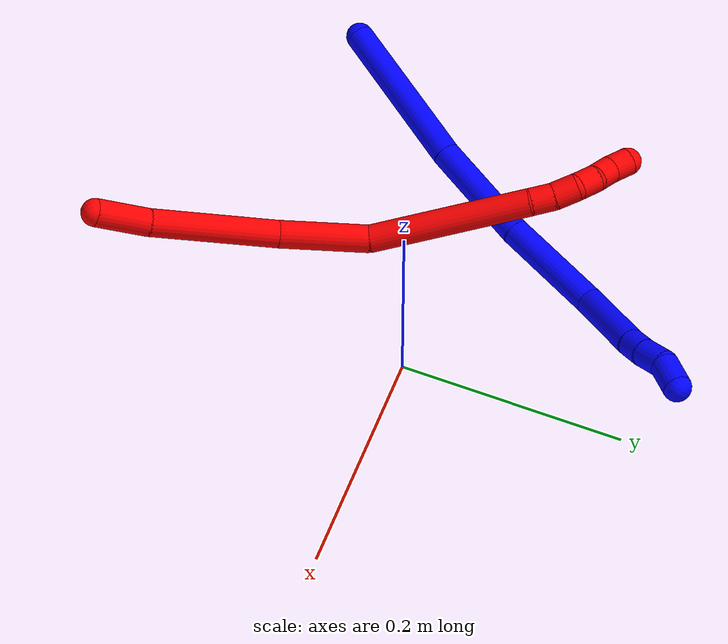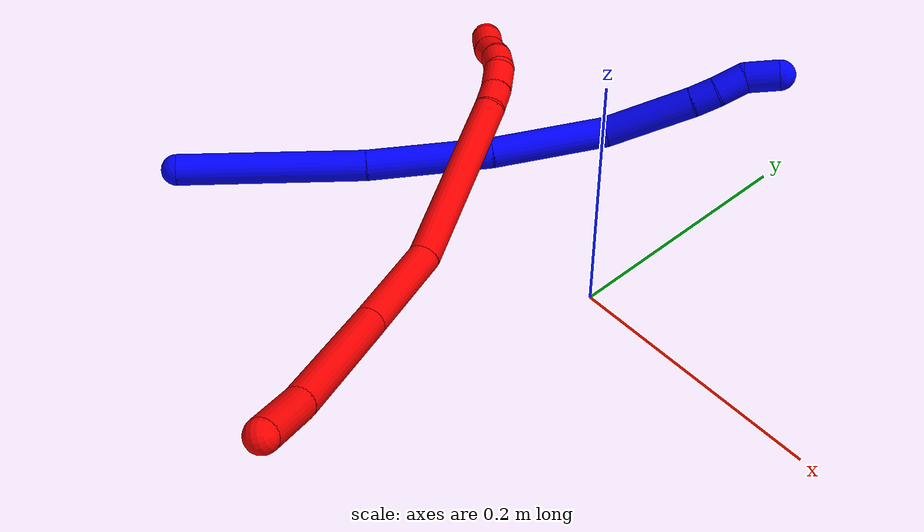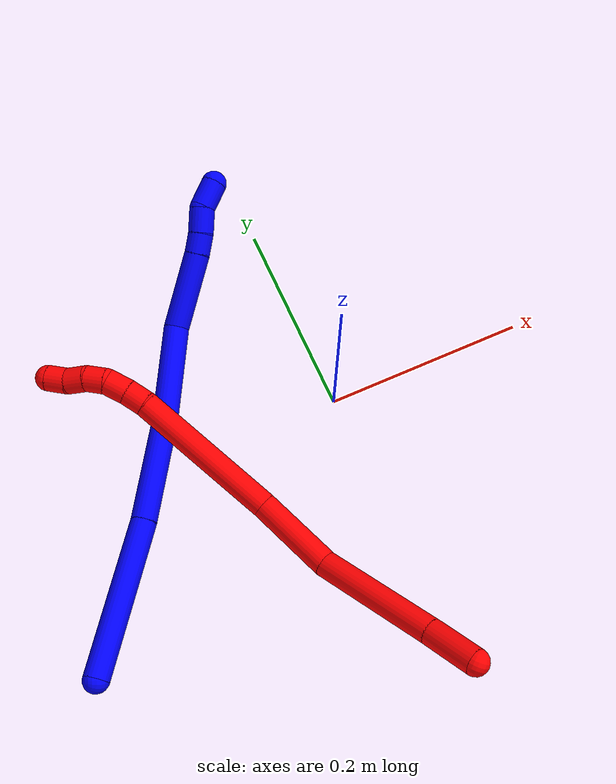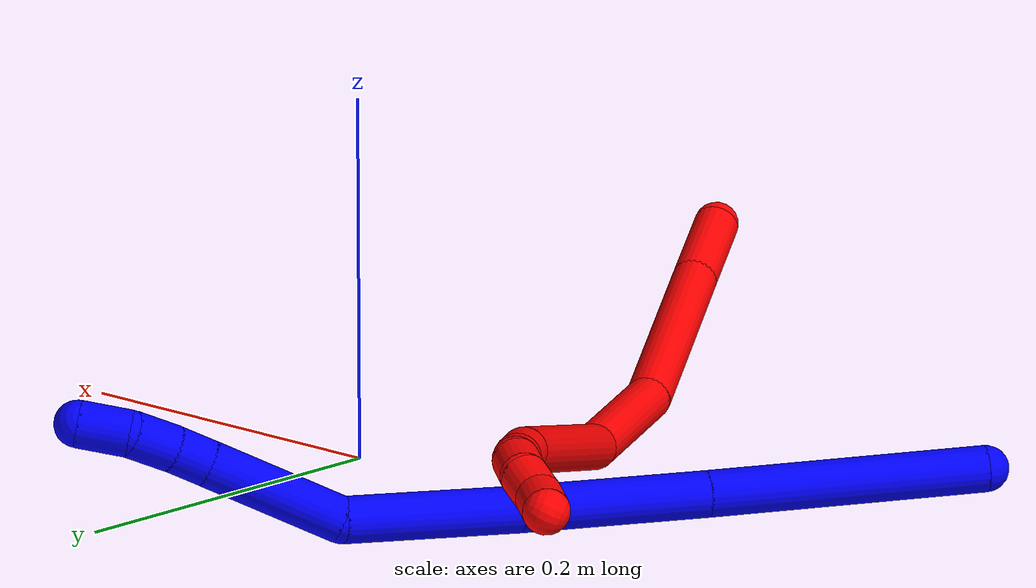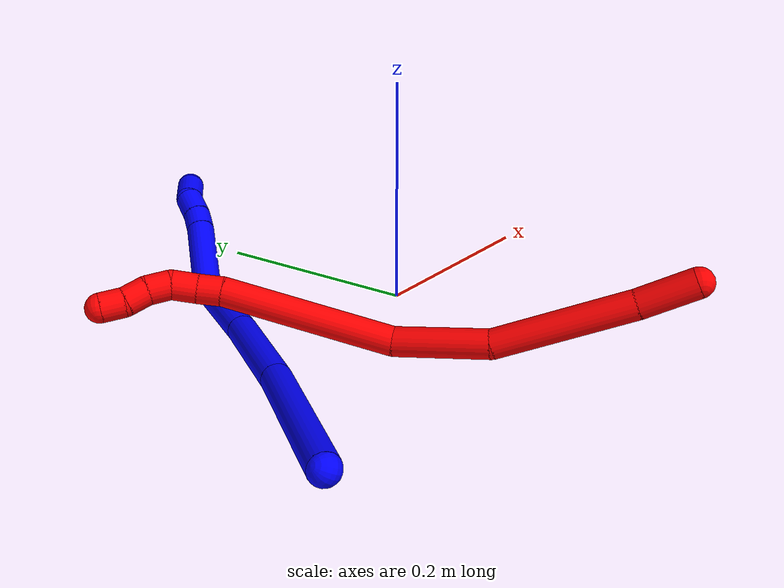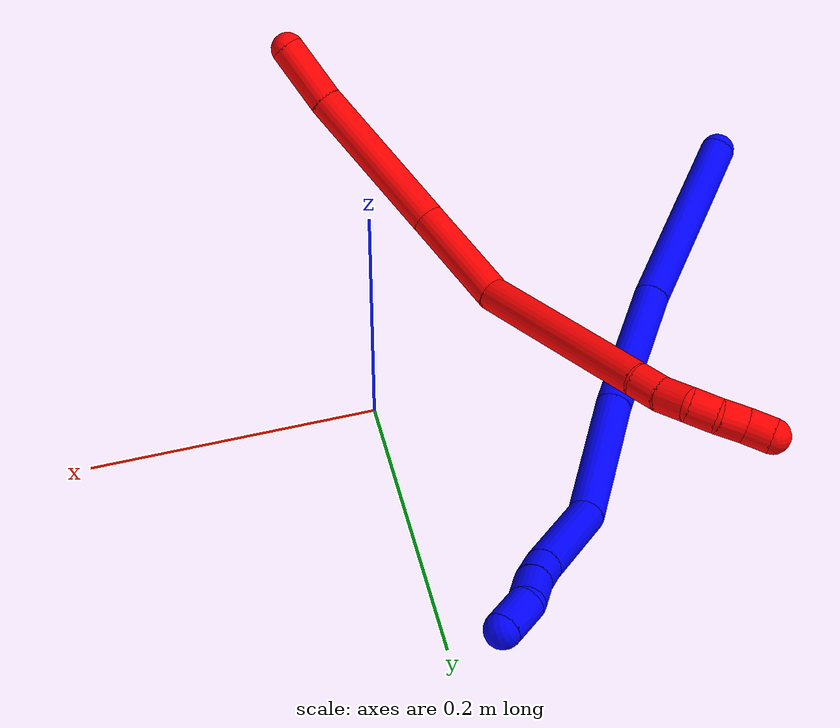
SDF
<sdf version="1.7">
 <world name="default">
  <model name="photoneo_s_sensor">
   <static>1</static>
   <pose>0 0 2 1.57079 1.57079 3.14159</pose>
   <link name="link">
    <inertial><mass>0.1</mass></inertial>
    <sensor name="sensor" type="depth">
     <update_rate>30</update_rate>
     <camera>
      <horizontal_fov>1.22</horizontal_fov>
      <image><width>1920</width><height>1200</height><format>B8G8R8</format></image>
      <clip><near>0.1</near><far>4</far></clip>
      <depth_camera><output>points</output></depth_camera>
     </camera>
     <plugin name="camera_plugin" filename="libgazebo_ros_depth_camera.so">
      <baseline>0.2</baseline>
      <alwaysOn>1</alwaysOn>
      <updateRate>0.0</updateRate>
      <cameraName>camera_ir</cameraName>
      <imageTopicName>/camera/color/image_raw</imageTopicName>
      <cameraInfoTopicName>/camera/color/camera_info</cameraInfoTopicName>
      <depthImageTopicName>/camera/depth/image_raw</depthImageTopicName>
      <depthImageCameraInfoTopicName>/camera/depth/camera_info</depthImageCameraInfoTopicName>
      <pointCloudTopicName>/camera/depth/points</pointCloudTopicName>
      <frameName>fr_optical</frameName>
      <pointCloudCutoff>0.1</pointCloudCutoff>
      <pointCloudCutoffMax>2.0</pointCloudCutoffMax>
      <distortionK1>0</distortionK1>
      <distortionK2>0</distortionK2>
      <distortionK3>0</distortionK3>
      <distortionT1>0</distortionT1>
      <distortionT2>0</distortionT2>
      <CxPrime>0</CxPrime>
      <Cx>0</Cx>
      <Cy>0</Cy>
      <focalLength>0</focalLength>
      <hackBaseline>0</hackBaseline>
     </plugin>
    </sensor>
   </link>
  </model>
  <model name="bin">
   <static>1</static>
   <link name="bottom">
    <collision name="collision-bottom">
     <pose>0 0 -0.01 0 -0 0</pose>
     <geometry><box><size>0.8 0.6 0.02</size></box></geometry>
     <surface>
      <friction><ode><mu>100</mu><mu2>100</mu2></ode></friction>
      <contact><collide_bitmask>65535</collide_bitmask></contact>
     </surface>
    </collision>
   </link>
   <link name="west_wall">
    <collision name="collision-west_wall">
     <pose>-0.41 0 0.1 0 -0 0</pose>
     <geometry><box><size>0.02 0.6 0.2</size></box></geometry>
     <surface>
      <friction><ode><mu>100</mu><mu2>100</mu2></ode></friction>
      <contact><collide_bitmask>65535</collide_bitmask></contact>
     </surface>
    </collision>
   </link>
   <link name="east_wall">
    <collision name="collision-east_wall">
     <pose>0.41 0 0.1 0 -0 0</pose>
     <geometry><box><size>0.02 0.6 0.2</size></box></geometry>
     <surface>
      <friction><ode><mu>100</mu><mu2>100</mu2></ode></friction>
      <contact><collide_bitmask>65535</collide_bitmask></contact>
     </surface>
    </collision>
   </link>
   <link name="south_wall">
    <collision name="collision-south_wall">
     <pose>0 -0.31 0.1 0 -0 0</pose>
     <geometry><box><size>0.8 0.02 0.2</size></box></geometry>
     <surface>
      <friction><ode><mu>100</mu><mu2>100</mu2></ode></friction>
      <contact><collide_bitmask>65535</collide_bitmask></contact>
     </surface>
    </collision>
   </link>
   <link name="north_wall">
    <collision name="collision-north_wall">
     <pose>0 0.31 0.1 0 -0 0</pose>
     <geometry><box><size>0.8 0.02 0.2</size></box></geometry>
     <surface>
      <friction><ode><mu>100</mu><mu2>100</mu2></ode></friction>
      <contact><collide_bitmask>65535</collide_bitmask></contact>
     </surface>
    </collision>
   </link>
  </model>
  <model name="1">
   <static>0</static>
   <link name="1">
    <collision name="collision-cylinder-e_1_1_4">
     <pose>0.03828 0.058391 -0.028003 -2.01797 0.533859 -0.81964</pose>
     <geometry><cylinder><radius>0.0125</radius><length>0.150453</length></cylinder></geometry>
     <surface>
      <friction><ode><mu>1.16</mu><mu2>1.16</mu2><slip1>0</slip1><slip2>0</slip2></ode></friction>
      <contact><ode><kp>1e+06</kp><kd>1</kd><max_vel>0</max_vel><min_depth>0.001</min_depth></ode></contact>
     </surface>
    </collision>
    <visual name="visual-cylinder-e_1_1_4">
     <pose>0.03828 0.058391 -0.028003 -2.01797 0.533859 -0.81964</pose>
     <geometry><cylinder><radius>0.0125</radius><length>0.150453</length></cylinder></geometry>
     <material><ambient>0 0 1 1</ambient></material>
    </visual>
    <collision name="collision-cylinder-e_2_4_5">
     <pose>0.102818 0.158093 -0.071095 -1.92101 0.538263 -0.751334</pose>
     <geometry><cylinder><radius>0.0125</radius><length>0.102445</length></cylinder></geometry>
     <surface>
      <friction><ode><mu>1.16</mu><mu2>1.16</mu2><slip1>0</slip1><slip2>0</slip2></ode></friction>
      <contact><ode><kp>1e+06</kp><kd>1</kd><max_vel>0</max_vel><min_depth>0.001</min_depth></ode></contact>
     </surface>
    </collision>
    <visual name="visual-cylinder-e_2_4_5">
     <pose>0.102818 0.158093 -0.071095 -1.92101 0.538263 -0.751334</pose>
     <geometry><cylinder><radius>0.0125</radius><length>0.102445</length></cylinder></geometry>
     <material><ambient>0 0 1 1</ambient></material>
    </visual>
    <collision name="collision-cylinder-e_3_5_6">
     <pose>0.154561 0.239701 -0.096542 -1.82239 0.549535 -0.697339</pose>
     <geometry><cylinder><radius>0.0125</radius><length>0.097584</length></cylinder></geometry>
     <surface>
      <friction><ode><mu>1.16</mu><mu2>1.16</mu2><slip1>0</slip1><slip2>0</slip2></ode></friction>
      <contact><ode><kp>1e+06</kp><kd>1</kd><max_vel>0</max_vel><min_depth>0.001</min_depth></ode></contact>
     </surface>
    </collision>
    <visual name="visual-cylinder-e_3_5_6">
     <pose>0.154561 0.239701 -0.096542 -1.82239 0.549535 -0.697339</pose>
     <geometry><cylinder><radius>0.0125</radius><length>0.097584</length></cylinder></geometry>
     <material><ambient>0 0 1 1</ambient></material>
    </visual>
    <collision name="collision-cylinder-e_4_6_7">
     <pose>0.212445 0.29921 -0.113134 -1.88454 1.01339 -1.30429</pose>
     <geometry><cylinder><radius>0.0125</radius><length>0.076358</length></cylinder></geometry>
     <surface>
      <friction><ode><mu>1.16</mu><mu2>1.16</mu2><slip1>0</slip1><slip2>0</slip2></ode></friction>
      <contact><ode><kp>1e+06</kp><kd>1</kd><max_vel>0</max_vel><min_depth>0.001</min_depth></ode></contact>
     </surface>
    </collision>
    <visual name="visual-cylinder-e_4_6_7">
     <pose>0.212445 0.29921 -0.113134 -1.88454 1.01339 -1.30429</pose>
     <geometry><cylinder><radius>0.0125</radius><length>0.076358</length></cylinder></geometry>
     <material><ambient>0 0 1 1</ambient></material>
    </visual>
    <collision name="collision-cylinder-e_5_7_8">
     <pose>0.253364 0.324023 -0.120233 -1.72413 0.983615 -1.117</pose>
     <geometry><cylinder><radius>0.0125</radius><length>0.020467</length></cylinder></geometry>
     <surface>
      <friction><ode><mu>1.16</mu><mu2>1.16</mu2><slip1>0</slip1><slip2>0</slip2></ode></friction>
      <contact><ode><kp>1e+06</kp><kd>1</kd><max_vel>0</max_vel><min_depth>0.001</min_depth></ode></contact>
     </surface>
    </collision>
    <visual name="visual-cylinder-e_5_7_8">
     <pose>0.253364 0.324023 -0.120233 -1.72413 0.983615 -1.117</pose>
     <geometry><cylinder><radius>0.0125</radius><length>0.020467</length></cylinder></geometry>
     <material><ambient>0 0 1 1</ambient></material>
    </visual>
    <collision name="collision-cylinder-e_6_8_9">
     <pose>0.27154 0.337595 -0.121032 -1.56241 0.880875 -0.874421</pose>
     <geometry><cylinder><radius>0.0125</radius><length>0.025041</length></cylinder></geometry>
     <surface>
      <friction><ode><mu>1.16</mu><mu2>1.16</mu2><slip1>0</slip1><slip2>0</slip2></ode></friction>
      <contact><ode><kp>1e+06</kp><kd>1</kd><max_vel>0</max_vel><min_depth>0.001</min_depth></ode></contact>
     </surface>
    </collision>
    <visual name="visual-cylinder-e_6_8_9">
     <pose>0.27154 0.337595 -0.121032 -1.56241 0.880875 -0.874421</pose>
     <geometry><cylinder><radius>0.0125</radius><length>0.025041</length></cylinder></geometry>
     <material><ambient>0 0 1 1</ambient></material>
    </visual>
    <collision name="collision-cylinder-e_7_9_2">
     <pose>0.291209 0.35335 -0.126469 -2.18604 0.809761 -1.38278</pose>
     <geometry><cylinder><radius>0.0125</radius><length>0.027652</length></cylinder></geometry>
     <surface>
      <friction><ode><mu>1.16</mu><mu2>1.16</mu2><slip1>0</slip1><slip2>0</slip2></ode></friction>
      <contact><ode><kp>1e+06</kp><kd>1</kd><max_vel>0</max_vel><min_depth>0.001</min_depth></ode></contact>
     </surface>
    </collision>
    <visual name="visual-cylinder-e_7_9_2">
     <pose>0.291209 0.35335 -0.126469 -2.18604 0.809761 -1.38278</pose>
     <geometry><cylinder><radius>0.0125</radius><length>0.027652</length></cylinder></geometry>
     <material><ambient>0 0 1 1</ambient></material>
    </visual>
    <collision name="collision-sphere-2">
     <pose>0.30122 0.361137 -0.131972 0 -0 0</pose>
     <geometry><sphere><radius>0.0125</radius></sphere></geometry>
     <surface>
      <friction><ode><mu>1.16</mu><mu2>1.16</mu2><slip1>0</slip1><slip2>0</slip2></ode></friction>
      <contact><ode><kp>1e+06</kp><kd>1</kd><max_vel>0</max_vel><min_depth>0.001</min_depth></ode></contact>
     </surface>
    </collision>
    <visual name="visual-sphere-2">
     <pose>0.30122 0.361137 -0.131972 0 -0 0</pose>
     <geometry><sphere><radius>0.0125</radius></sphere></geometry>
     <material><ambient>0 0 1 1</ambient></material>
    </visual>
    <collision name="collision-sphere-9">
     <pose>0.281197 0.345563 -0.120965 0 -0 0</pose>
     <geometry><sphere><radius>0.0125</radius></sphere></geometry>
     <surface>
      <friction><ode><mu>1.16</mu><mu2>1.16</mu2><slip1>0</slip1><slip2>0</slip2></ode></friction>
      <contact><ode><kp>1e+06</kp><kd>1</kd><max_vel>0</max_vel><min_depth>0.001</min_depth></ode></contact>
     </surface>
    </collision>
    <visual name="visual-sphere-9">
     <pose>0.281197 0.345563 -0.120965 0 -0 0</pose>
     <geometry><sphere><radius>0.0125</radius></sphere></geometry>
     <material><ambient>0 0 1 1</ambient></material>
    </visual>
    <collision name="collision-sphere-4">
     <pose>0.076559 0.116782 -0.056006 0 -0 0</pose>
     <geometry><sphere><radius>0.0125</radius></sphere></geometry>
     <surface>
      <friction><ode><mu>1.16</mu><mu2>1.16</mu2><slip1>0</slip1><slip2>0</slip2></ode></friction>
      <contact><ode><kp>1e+06</kp><kd>1</kd><max_vel>0</max_vel><min_depth>0.001</min_depth></ode></contact>
     </surface>
    </collision>
    <visual name="visual-sphere-4">
     <pose>0.076559 0.116782 -0.056006 0 -0 0</pose>
     <geometry><sphere><radius>0.0125</radius></sphere></geometry>
     <material><ambient>0 0 1 1</ambient></material>
    </visual>
    <collision name="collision-sphere-1">
     <geometry><sphere><radius>0.0125</radius></sphere></geometry>
     <surface>
      <friction><ode><mu>1.16</mu><mu2>1.16</mu2><slip1>0</slip1><slip2>0</slip2></ode></friction>
      <contact><ode><kp>1e+06</kp><kd>1</kd><max_vel>0</max_vel><min_depth>0.001</min_depth></ode></contact>
     </surface>
    </collision>
    <visual name="visual-sphere-1">
     <geometry><sphere><radius>0.0125</radius></sphere></geometry>
     <material><ambient>0 0 1 1</ambient></material>
    </visual>
    <collision name="collision-sphere-8">
     <pose>0.261883 0.329626 -0.121099 0 -0 0</pose>
     <geometry><sphere><radius>0.0125</radius></sphere></geometry>
     <surface>
      <friction><ode><mu>1.16</mu><mu2>1.16</mu2><slip1>0</slip1><slip2>0</slip2></ode></friction>
      <contact><ode><kp>1e+06</kp><kd>1</kd><max_vel>0</max_vel><min_depth>0.001</min_depth></ode></contact>
     </surface>
    </collision>
    <visual name="visual-sphere-8">
     <pose>0.261883 0.329626 -0.121099 0 -0 0</pose>
     <geometry><sphere><radius>0.0125</radius></sphere></geometry>
     <material><ambient>0 0 1 1</ambient></material>
    </visual>
    <collision name="collision-sphere-5">
     <pose>0.129077 0.199403 -0.086184 0 -0 0</pose>
     <geometry><sphere><radius>0.0125</radius></sphere></geometry>
     <surface>
      <friction><ode><mu>1.16</mu><mu2>1.16</mu2><slip1>0</slip1><slip2>0</slip2></ode></friction>
      <contact><ode><kp>1e+06</kp><kd>1</kd><max_vel>0</max_vel><min_depth>0.001</min_depth></ode></contact>
     </surface>
    </collision>
    <visual name="visual-sphere-5">
     <pose>0.129077 0.199403 -0.086184 0 -0 0</pose>
     <geometry><sphere><radius>0.0125</radius></sphere></geometry>
     <material><ambient>0 0 1 1</ambient></material>
    </visual>
    <collision name="collision-sphere-6">
     <pose>0.180045 0.279999 -0.106901 0 -0 0</pose>
     <geometry><sphere><radius>0.0125</radius></sphere></geometry>
     <surface>
      <friction><ode><mu>1.16</mu><mu2>1.16</mu2><slip1>0</slip1><slip2>0</slip2></ode></friction>
      <contact><ode><kp>1e+06</kp><kd>1</kd><max_vel>0</max_vel><min_depth>0.001</min_depth></ode></contact>
     </surface>
    </collision>
    <visual name="visual-sphere-6">
     <pose>0.180045 0.279999 -0.106901 0 -0 0</pose>
     <geometry><sphere><radius>0.0125</radius></sphere></geometry>
     <material><ambient>0 0 1 1</ambient></material>
    </visual>
    <collision name="collision-sphere-7">
     <pose>0.244844 0.31842 -0.119367 0 -0 0</pose>
     <geometry><sphere><radius>0.0125</radius></sphere></geometry>
     <surface>
      <friction><ode><mu>1.16</mu><mu2>1.16</mu2><slip1>0</slip1><slip2>0</slip2></ode></friction>
      <contact><ode><kp>1e+06</kp><kd>1</kd><max_vel>0</max_vel><min_depth>0.001</min_depth></ode></contact>
     </surface>
    </collision>
    <visual name="visual-sphere-7">
     <pose>0.244844 0.31842 -0.119367 0 -0 0</pose>
     <geometry><sphere><radius>0.0125</radius></sphere></geometry>
     <material><ambient>0 0 1 1</ambient></material>
    </visual>
    <inertial>
     <pose>0.13527 0.192151 -0.07709 0 -0 0</pose>
     <mass>0.5</mass>
     <inertia>
      <ixx>7e-06</ixx>
      <ixy>0</ixy>
      <ixz>0</ixz>
      <iyy>-0.000216</iyy>
      <iyz>0</iyz>
      <izz>-0.000679</izz>
     </inertia>
    </inertial>
   </link>
   <pose>-0.30634 -0.160494 0.019296 -0.58669 -0.919383 0.465599</pose>
  </model>
  <model name="2">
   <static>0</static>
   <link name="2">
    <collision name="collision-cylinder-e_1_1_4">
     <pose>-0.020562 0.013727 -0.000702 -1.62192 -0.981553 1.02467</pose>
     <geometry><cylinder><radius>0.0125</radius><length>0.049465</length></cylinder></geometry>
     <surface>
      <friction><ode><mu>1.16</mu><mu2>1.16</mu2><slip1>0</slip1><slip2>0</slip2></ode></friction>
      <contact><ode><kp>1e+06</kp><kd>1</kd><max_vel>0</max_vel><min_depth>0.001</min_depth></ode></contact>
     </surface>
    </collision>
    <visual name="visual-cylinder-e_1_1_4">
     <pose>-0.020562 0.013727 -0.000702 -1.62192 -0.981553 1.02467</pose>
     <geometry><cylinder><radius>0.0125</radius><length>0.049465</length></cylinder></geometry>
     <material><ambient>1 0 0 1</ambient></material>
    </visual>
    <collision name="collision-cylinder-e_2_4_5">
     <pose>-0.086957 0.06549 -0.003598 -1.62838 -0.877277 0.922394</pose>
     <geometry><cylinder><radius>0.0125</radius><length>0.119203</length></cylinder></geometry>
     <surface>
      <friction><ode><mu>1.16</mu><mu2>1.16</mu2><slip1>0</slip1><slip2>0</slip2></ode></friction>
      <contact><ode><kp>1e+06</kp><kd>1</kd><max_vel>0</max_vel><min_depth>0.001</min_depth></ode></contact>
     </surface>
    </collision>
    <visual name="visual-cylinder-e_2_4_5">
     <pose>-0.086957 0.06549 -0.003598 -1.62838 -0.877277 0.922394</pose>
     <geometry><cylinder><radius>0.0125</radius><length>0.119203</length></cylinder></geometry>
     <material><ambient>1 0 0 1</ambient></material>
    </visual>
    <collision name="collision-cylinder-e_3_5_6">
     <pose>-0.158403 0.133188 -0.016882 -1.92865 -0.680102 0.943274</pose>
     <geometry><cylinder><radius>0.0125</radius><length>0.081457</length></cylinder></geometry>
     <surface>
      <friction><ode><mu>1.16</mu><mu2>1.16</mu2><slip1>0</slip1><slip2>0</slip2></ode></friction>
      <contact><ode><kp>1e+06</kp><kd>1</kd><max_vel>0</max_vel><min_depth>0.001</min_depth></ode></contact>
     </surface>
    </collision>
    <visual name="visual-cylinder-e_3_5_6">
     <pose>-0.158403 0.133188 -0.016882 -1.92865 -0.680102 0.943274</pose>
     <geometry><cylinder><radius>0.0125</radius><length>0.081457</length></cylinder></geometry>
     <material><ambient>1 0 0 1</ambient></material>
    </visual>
    <collision name="collision-cylinder-e_4_6_7">
     <pose>-0.207737 0.22831 -0.050944 -1.90827 -0.329459 0.460687</pose>
     <geometry><cylinder><radius>0.0125</radius><length>0.146635</length></cylinder></geometry>
     <surface>
      <friction><ode><mu>1.16</mu><mu2>1.16</mu2><slip1>0</slip1><slip2>0</slip2></ode></friction>
      <contact><ode><kp>1e+06</kp><kd>1</kd><max_vel>0</max_vel><min_depth>0.001</min_depth></ode></contact>
     </surface>
    </collision>
    <visual name="visual-cylinder-e_4_6_7">
     <pose>-0.207737 0.22831 -0.050944 -1.90827 -0.329459 0.460687</pose>
     <geometry><cylinder><radius>0.0125</radius><length>0.146635</length></cylinder></geometry>
     <material><ambient>1 0 0 1</ambient></material>
    </visual>
    <collision name="collision-cylinder-e_5_7_8">
     <pose>-0.235856 0.303175 -0.07568 -1.75633 -0.430888 0.515731</pose>
     <geometry><cylinder><radius>0.0125</radius><length>0.021062</length></cylinder></geometry>
     <surface>
      <friction><ode><mu>1.16</mu><mu2>1.16</mu2><slip1>0</slip1><slip2>0</slip2></ode></friction>
      <contact><ode><kp>1e+06</kp><kd>1</kd><max_vel>0</max_vel><min_depth>0.001</min_depth></ode></contact>
     </surface>
    </collision>
    <visual name="visual-cylinder-e_5_7_8">
     <pose>-0.235856 0.303175 -0.07568 -1.75633 -0.430888 0.515731</pose>
     <geometry><cylinder><radius>0.0125</radius><length>0.021062</length></cylinder></geometry>
     <material><ambient>1 0 0 1</ambient></material>
    </visual>
    <collision name="collision-cylinder-e_6_8_9">
     <pose>-0.243477 0.323062 -0.078456 -1.66694 -0.296985 0.326497</pose>
     <geometry><cylinder><radius>0.0125</radius><length>0.022027</length></cylinder></geometry>
     <surface>
      <friction><ode><mu>1.16</mu><mu2>1.16</mu2><slip1>0</slip1><slip2>0</slip2></ode></friction>
      <contact><ode><kp>1e+06</kp><kd>1</kd><max_vel>0</max_vel><min_depth>0.001</min_depth></ode></contact>
     </surface>
    </collision>
    <visual name="visual-cylinder-e_6_8_9">
     <pose>-0.243477 0.323062 -0.078456 -1.66694 -0.296985 0.326497</pose>
     <geometry><cylinder><radius>0.0125</radius><length>0.022027</length></cylinder></geometry>
     <material><ambient>1 0 0 1</ambient></material>
    </visual>
    <collision name="collision-cylinder-e_7_9_10">
     <pose>-0.25128 0.342049 -0.076861 -1.27337 -0.47548 0.354585</pose>
     <geometry><cylinder><radius>0.0125</radius><length>0.020008</length></cylinder></geometry>
     <surface>
      <friction><ode><mu>1.16</mu><mu2>1.16</mu2><slip1>0</slip1><slip2>0</slip2></ode></friction>
      <contact><ode><kp>1e+06</kp><kd>1</kd><max_vel>0</max_vel><min_depth>0.001</min_depth></ode></contact>
     </surface>
    </collision>
    <visual name="visual-cylinder-e_7_9_10">
     <pose>-0.25128 0.342049 -0.076861 -1.27337 -0.47548 0.354585</pose>
     <geometry><cylinder><radius>0.0125</radius><length>0.020008</length></cylinder></geometry>
     <material><ambient>1 0 0 1</ambient></material>
    </visual>
    <collision name="collision-cylinder-e_8_10_11">
     <pose>-0.260731 0.357749 -0.069184 -0.957041 -0.505462 0.266342</pose>
     <geometry><cylinder><radius>0.0125</radius><length>0.02012</length></cylinder></geometry>
     <surface>
      <friction><ode><mu>1.16</mu><mu2>1.16</mu2><slip1>0</slip1><slip2>0</slip2></ode></friction>
      <contact><ode><kp>1e+06</kp><kd>1</kd><max_vel>0</max_vel><min_depth>0.001</min_depth></ode></contact>
     </surface>
    </collision>
    <visual name="visual-cylinder-e_8_10_11">
     <pose>-0.260731 0.357749 -0.069184 -0.957041 -0.505462 0.266342</pose>
     <geometry><cylinder><radius>0.0125</radius><length>0.02012</length></cylinder></geometry>
     <material><ambient>1 0 0 1</ambient></material>
    </visual>
    <collision name="collision-cylinder-e_9_11_2">
     <pose>-0.270153 0.373501 -0.061606 -1.28555 -0.471914 0.356291</pose>
     <geometry><cylinder><radius>0.0125</radius><length>0.020022</length></cylinder></geometry>
     <surface>
      <friction><ode><mu>1.16</mu><mu2>1.16</mu2><slip1>0</slip1><slip2>0</slip2></ode></friction>
      <contact><ode><kp>1e+06</kp><kd>1</kd><max_vel>0</max_vel><min_depth>0.001</min_depth></ode></contact>
     </surface>
    </collision>
    <visual name="visual-cylinder-e_9_11_2">
     <pose>-0.270153 0.373501 -0.061606 -1.28555 -0.471914 0.356291</pose>
     <geometry><cylinder><radius>0.0125</radius><length>0.020022</length></cylinder></geometry>
     <material><ambient>1 0 0 1</ambient></material>
    </visual>
    <collision name="collision-sphere-2">
     <pose>-0.274704 0.382057 -0.059097 0 -0 0</pose>
     <geometry><sphere><radius>0.0125</radius></sphere></geometry>
     <surface>
      <friction><ode><mu>1.16</mu><mu2>1.16</mu2><slip1>0</slip1><slip2>0</slip2></ode></friction>
      <contact><ode><kp>1e+06</kp><kd>1</kd><max_vel>0</max_vel><min_depth>0.001</min_depth></ode></contact>
     </surface>
    </collision>
    <visual name="visual-sphere-2">
     <pose>-0.274704 0.382057 -0.059097 0 -0 0</pose>
     <geometry><sphere><radius>0.0125</radius></sphere></geometry>
     <material><ambient>1 0 0 1</ambient></material>
    </visual>
    <collision name="collision-sphere-11">
     <pose>-0.265602 0.364944 -0.064115 0 -0 0</pose>
     <geometry><sphere><radius>0.0125</radius></sphere></geometry>
     <surface>
      <friction><ode><mu>1.16</mu><mu2>1.16</mu2><slip1>0</slip1><slip2>0</slip2></ode></friction>
      <contact><ode><kp>1e+06</kp><kd>1</kd><max_vel>0</max_vel><min_depth>0.001</min_depth></ode></contact>
     </surface>
    </collision>
    <visual name="visual-sphere-11">
     <pose>-0.265602 0.364944 -0.064115 0 -0 0</pose>
     <geometry><sphere><radius>0.0125</radius></sphere></geometry>
     <material><ambient>1 0 0 1</ambient></material>
    </visual>
    <collision name="collision-sphere-10">
     <pose>-0.25586 0.350553 -0.074254 0 -0 0</pose>
     <geometry><sphere><radius>0.0125</radius></sphere></geometry>
     <surface>
      <friction><ode><mu>1.16</mu><mu2>1.16</mu2><slip1>0</slip1><slip2>0</slip2></ode></friction>
      <contact><ode><kp>1e+06</kp><kd>1</kd><max_vel>0</max_vel><min_depth>0.001</min_depth></ode></contact>
     </surface>
    </collision>
    <visual name="visual-sphere-10">
     <pose>-0.25586 0.350553 -0.074254 0 -0 0</pose>
     <geometry><sphere><radius>0.0125</radius></sphere></geometry>
     <material><ambient>1 0 0 1</ambient></material>
    </visual>
    <collision name="collision-sphere-9">
     <pose>-0.2467 0.333545 -0.079467 0 -0 0</pose>
     <geometry><sphere><radius>0.0125</radius></sphere></geometry>
     <surface>
      <friction><ode><mu>1.16</mu><mu2>1.16</mu2><slip1>0</slip1><slip2>0</slip2></ode></friction>
      <contact><ode><kp>1e+06</kp><kd>1</kd><max_vel>0</max_vel><min_depth>0.001</min_depth></ode></contact>
     </surface>
    </collision>
    <visual name="visual-sphere-9">
     <pose>-0.2467 0.333545 -0.079467 0 -0 0</pose>
     <geometry><sphere><radius>0.0125</radius></sphere></geometry>
     <material><ambient>1 0 0 1</ambient></material>
    </visual>
    <collision name="collision-sphere-4">
     <pose>-0.041123 0.027453 -0.001405 0 -0 0</pose>
     <geometry><sphere><radius>0.0125</radius></sphere></geometry>
     <surface>
      <friction><ode><mu>1.16</mu><mu2>1.16</mu2><slip1>0</slip1><slip2>0</slip2></ode></friction>
      <contact><ode><kp>1e+06</kp><kd>1</kd><max_vel>0</max_vel><min_depth>0.001</min_depth></ode></contact>
     </surface>
    </collision>
    <visual name="visual-sphere-4">
     <pose>-0.041123 0.027453 -0.001405 0 -0 0</pose>
     <geometry><sphere><radius>0.0125</radius></sphere></geometry>
     <material><ambient>1 0 0 1</ambient></material>
    </visual>
    <collision name="collision-sphere-1">
     <geometry><sphere><radius>0.0125</radius></sphere></geometry>
     <surface>
      <friction><ode><mu>1.16</mu><mu2>1.16</mu2><slip1>0</slip1><slip2>0</slip2></ode></friction>
      <contact><ode><kp>1e+06</kp><kd>1</kd><max_vel>0</max_vel><min_depth>0.001</min_depth></ode></contact>
     </surface>
    </collision>
    <visual name="visual-sphere-1">
     <geometry><sphere><radius>0.0125</radius></sphere></geometry>
     <material><ambient>1 0 0 1</ambient></material>
    </visual>
    <collision name="collision-sphere-8">
     <pose>-0.240254 0.312579 -0.077445 0 -0 0</pose>
     <geometry><sphere><radius>0.0125</radius></sphere></geometry>
     <surface>
      <friction><ode><mu>1.16</mu><mu2>1.16</mu2><slip1>0</slip1><slip2>0</slip2></ode></friction>
      <contact><ode><kp>1e+06</kp><kd>1</kd><max_vel>0</max_vel><min_depth>0.001</min_depth></ode></contact>
     </surface>
    </collision>
    <visual name="visual-sphere-8">
     <pose>-0.240254 0.312579 -0.077445 0 -0 0</pose>
     <geometry><sphere><radius>0.0125</radius></sphere></geometry>
     <material><ambient>1 0 0 1</ambient></material>
    </visual>
    <collision name="collision-sphere-5">
     <pose>-0.13279 0.103527 -0.00579 0 -0 0</pose>
     <geometry><sphere><radius>0.0125</radius></sphere></geometry>
     <surface>
      <friction><ode><mu>1.16</mu><mu2>1.16</mu2><slip1>0</slip1><slip2>0</slip2></ode></friction>
      <contact><ode><kp>1e+06</kp><kd>1</kd><max_vel>0</max_vel><min_depth>0.001</min_depth></ode></contact>
     </surface>
    </collision>
    <visual name="visual-sphere-5">
     <pose>-0.13279 0.103527 -0.00579 0 -0 0</pose>
     <geometry><sphere><radius>0.0125</radius></sphere></geometry>
     <material><ambient>1 0 0 1</ambient></material>
    </visual>
    <collision name="collision-sphere-6">
     <pose>-0.184016 0.162848 -0.027974 0 -0 0</pose>
     <geometry><sphere><radius>0.0125</radius></sphere></geometry>
     <surface>
      <friction><ode><mu>1.16</mu><mu2>1.16</mu2><slip1>0</slip1><slip2>0</slip2></ode></friction>
      <contact><ode><kp>1e+06</kp><kd>1</kd><max_vel>0</max_vel><min_depth>0.001</min_depth></ode></contact>
     </surface>
    </collision>
    <visual name="visual-sphere-6">
     <pose>-0.184016 0.162848 -0.027974 0 -0 0</pose>
     <geometry><sphere><radius>0.0125</radius></sphere></geometry>
     <material><ambient>1 0 0 1</ambient></material>
    </visual>
    <collision name="collision-sphere-7">
     <pose>-0.231457 0.293771 -0.073915 0 -0 0</pose>
     <geometry><sphere><radius>0.0125</radius></sphere></geometry>
     <surface>
      <friction><ode><mu>1.16</mu><mu2>1.16</mu2><slip1>0</slip1><slip2>0</slip2></ode></friction>
      <contact><ode><kp>1e+06</kp><kd>1</kd><max_vel>0</max_vel><min_depth>0.001</min_depth></ode></contact>
     </surface>
    </collision>
    <visual name="visual-sphere-7">
     <pose>-0.231457 0.293771 -0.073915 0 -0 0</pose>
     <geometry><sphere><radius>0.0125</radius></sphere></geometry>
     <material><ambient>1 0 0 1</ambient></material>
    </visual>
    <inertial>
     <pose>-0.161521 0.175669 -0.033589 0 -0 0</pose>
     <mass>0.5</mass>
     <inertia>
      <ixx>0.00052</ixx>
      <ixy>0</ixy>
      <ixz>0</ixz>
      <iyy>0.00032</iyy>
      <iyz>0</iyz>
      <izz>-0.000143</izz>
     </inertia>
    </inertial>
   </link>
   <pose>-0.00393 -0.286789 0.079909 2.38506 -0.928891 -1.55716</pose>
  </model>
 </world>
</sdf>
